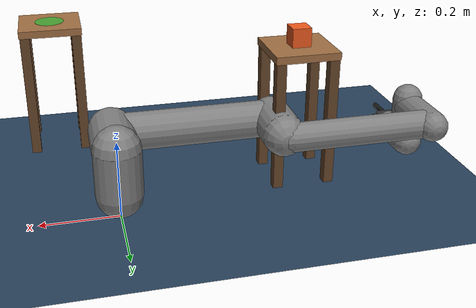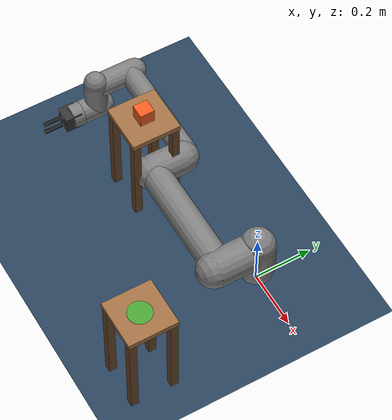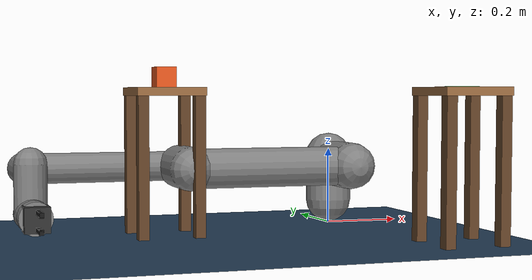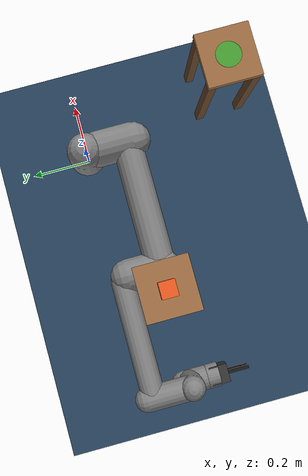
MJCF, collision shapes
<mujoco model="ur5e_pick">
  <compiler meshdir="ur5e_model/assets"/>
  <include file="ur5e_model/ur5e_with_gripper.xml"/>

  <statistic center="-0.18 -0.31 0.35" extent="1.0"/>

  <visual>
    <headlight diffuse="0.6 0.6 0.6" ambient="0.3 0.3 0.3" specular="0 0 0"/>
    <rgba haze="0.15 0.25 0.35 1"/>
    <global azimuth="150" elevation="-22"/>
  </visual>

  <asset>
    <texture type="skybox" builtin="gradient" rgb1="0.3 0.5 0.7" rgb2="0 0 0" width="512" height="3072"/>
    <texture type="2d" name="groundplane" builtin="checker" mark="edge" rgb1="0.2 0.3 0.4" rgb2="0.1 0.2 0.3" markrgb="0.8 0.8 0.8" width="300" height="300"/>
    <material name="groundplane" texture="groundplane" texuniform="true" texrepeat="5 5" reflectance="0.2"/>
    <material name="table_top" rgba="0.62 0.43 0.26 1"/>
    <material name="table_leg" rgba="0.40 0.27 0.16 1"/>
  </asset>

  <worldbody>
    <light pos="0 0 1.5" dir="0 0 -1" directional="true"/>
    <geom name="floor" size="0 0 .05" type="plane" material="groundplane"/>

    <camera name="overhead" pos="-0.18 -0.31 1.15" xyaxes="1 0 0 0 1 0" fovy="58"/>

    <body name="pick_table" pos="-0.49 -0.13 0">
      <geom name="pick_top" type="box" pos="0 0 0.355" size="0.085 0.085 0.01" material="table_top"/>
      <geom name="pick_leg_a" type="box" pos="0.07 0.07 0.1725" size="0.013 0.013 0.1725" material="table_leg"/>
      <geom name="pick_leg_b" type="box" pos="-0.07 0.07 0.1725" size="0.013 0.013 0.1725" material="table_leg"/>
      <geom name="pick_leg_c" type="box" pos="0.07 -0.07 0.1725" size="0.013 0.013 0.1725" material="table_leg"/>
      <geom name="pick_leg_d" type="box" pos="-0.07 -0.07 0.1725" size="0.013 0.013 0.1725" material="table_leg"/>
    </body>

    <body name="place_table" pos="0.13 -0.49 0">
      <geom name="place_top" type="box" pos="0 0 0.355" size="0.085 0.085 0.01" material="table_top"/>
      <geom name="place_leg_a" type="box" pos="0.07 0.07 0.1725" size="0.013 0.013 0.1725" material="table_leg"/>
      <geom name="place_leg_b" type="box" pos="-0.07 0.07 0.1725" size="0.013 0.013 0.1725" material="table_leg"/>
      <geom name="place_leg_c" type="box" pos="0.07 -0.07 0.1725" size="0.013 0.013 0.1725" material="table_leg"/>
      <geom name="place_leg_d" type="box" pos="-0.07 -0.07 0.1725" size="0.013 0.013 0.1725" material="table_leg"/>
    </body>

    <!-- Graspable cube (50 mm), resting on the pick table (center z=0.39, base
         at 0.365 flush on the table top). Compact, so it is gripped about its
         centre and cannot topple. -->
    <body name="object" pos="-0.49 -0.13 0.39">
      <freejoint name="object_free"/>
      <geom name="object_geom" type="box" size="0.025 0.025 0.025"
            rgba="0.93 0.35 0.12 1" mass="0.05" friction="1.5 0.05 0.001"/>
    </body>

    <!-- Place target marker on the place table (visual only). -->
    <site name="place_marker" pos="0.13 -0.49 0.366" size="0.04 0.001" rgba="0.1 0.8 0.2 0.6" type="cylinder"/>
    <site name="target_marker" pos="-0.49 -0.13 0.47" size="0.02" rgba="1 0 0 0" type="sphere"/>
  </worldbody>

  <equality>
    <weld name="grasp" body1="gripper_base" body2="object" active="false"/>
  </equality>
</mujoco>

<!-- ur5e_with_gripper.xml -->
<mujoco model="ur5e_with_gripper">
  <compiler angle="radian" autolimits="true"/>

  <option integrator="implicitfast"/>

  <default>
    <default class="ur5e">
      <material specular="0.5" shininess="0.25"/>
      <joint axis="0 1 0" range="-6.28319 6.28319" armature="0.1"/>
      <general gaintype="fixed" biastype="affine" ctrlrange="-6.2831 6.2831" gainprm="2000" biasprm="0 -2000 -400"
        forcerange="-150 150"/>
      <default class="size3">
        <default class="size3_limited">
          <joint range="-3.1415 3.1415"/>
          <general ctrlrange="-3.1415 3.1415"/>
        </default>
      </default>
      <default class="size1">
        <general gainprm="500" biasprm="0 -500 -100" forcerange="-28 28"/>
      </default>
      <default class="visual">
        <geom type="mesh" contype="0" conaffinity="0" group="2"/>
      </default>
      <default class="collision">
        <geom type="capsule" group="3"/>
        <default class="eef_collision">
          <geom type="cylinder"/>
        </default>
      </default>
      <site size="0.001" rgba="0.5 0.5 0.5 0.3" group="4"/>
    </default>

    <!-- Gripper Defaults -->
    <default class="gripper">
      <geom type="box" material="gripper_mat"/>
      <joint type="slide" range="0 0.05" armature="0.1" damping="10" limited="true"/>
      <default class="finger">
        <geom material="finger_mat"/>
      </default>
    </default>
  </default>

  <asset>
    <material class="ur5e" name="black" rgba="0.033 0.033 0.033 1"/>
    <material class="ur5e" name="jointgray" rgba="0.278 0.278 0.278 1"/>
    <material class="ur5e" name="linkgray" rgba="0.82 0.82 0.82 1"/>
    <material class="ur5e" name="urblue" rgba="0.49 0.678 0.8 1"/>

    <!-- Gripper Materials -->
    <material name="gripper_mat" rgba="0.2 0.2 0.2 1"/>
    <material name="finger_mat" rgba="0.1 0.1 0.1 1"/>

    <mesh file="base_0.obj"/>
    <mesh file="base_1.obj"/>
    <mesh file="shoulder_0.obj"/>
    <mesh file="shoulder_1.obj"/>
    <mesh file="shoulder_2.obj"/>
    <mesh file="upperarm_0.obj"/>
    <mesh file="upperarm_1.obj"/>
    <mesh file="upperarm_2.obj"/>
    <mesh file="upperarm_3.obj"/>
    <mesh file="forearm_0.obj"/>
    <mesh file="forearm_1.obj"/>
    <mesh file="forearm_2.obj"/>
    <mesh file="forearm_3.obj"/>
    <mesh file="wrist1_0.obj"/>
    <mesh file="wrist1_1.obj"/>
    <mesh file="wrist1_2.obj"/>
    <mesh file="wrist2_0.obj"/>
    <mesh file="wrist2_1.obj"/>
    <mesh file="wrist2_2.obj"/>
    <mesh file="wrist3.obj"/>
  </asset>

  <worldbody>
    <light name="spotlight" mode="targetbodycom" target="wrist_2_link" pos="0 -1 2"/>
    <body name="base" quat="0 0 0 -1" childclass="ur5e">
      <inertial mass="4.0" pos="0 0 0" diaginertia="0.00443333156 0.00443333156 0.0072"/>
      <geom mesh="base_0" material="black" class="visual"/>
      <geom mesh="base_1" material="jointgray" class="visual"/>
      <body name="shoulder_link" pos="0 0 0.163">
        <inertial mass="3.7" pos="0 0 0" diaginertia="0.0102675 0.0102675 0.00666"/>
        <joint name="shoulder_pan_joint" class="size3" axis="0 0 1"/>
        <geom mesh="shoulder_0" material="urblue" class="visual"/>
        <geom mesh="shoulder_1" material="black" class="visual"/>
        <geom mesh="shoulder_2" material="jointgray" class="visual"/>
        <geom class="collision" size="0.06 0.06" pos="0 0 -0.04"/>
        <body name="upper_arm_link" pos="0 0.138 0" quat="1 0 1 0">
          <inertial mass="8.393" pos="0 0 0.2125" diaginertia="0.133886 0.133886 0.0151074"/>
          <joint name="shoulder_lift_joint" class="size3"/>
          <geom mesh="upperarm_0" material="linkgray" class="visual"/>
          <geom mesh="upperarm_1" material="black" class="visual"/>
          <geom mesh="upperarm_2" material="jointgray" class="visual"/>
          <geom mesh="upperarm_3" material="urblue" class="visual"/>
          <geom class="collision" pos="0 -0.04 0" quat="1 1 0 0" size="0.06 0.06"/>
          <geom class="collision" size="0.05 0.2" pos="0 0 0.2"/>
          <body name="forearm_link" pos="0 -0.131 0.425">
            <inertial mass="2.275" pos="0 0 0.196" diaginertia="0.0311796 0.0311796 0.004095"/>
            <joint name="elbow_joint" class="size3_limited"/>
            <geom mesh="forearm_0" material="urblue" class="visual"/>
            <geom mesh="forearm_1" material="linkgray" class="visual"/>
            <geom mesh="forearm_2" material="black" class="visual"/>
            <geom mesh="forearm_3" material="jointgray" class="visual"/>
            <geom class="collision" pos="0 0.08 0" quat="1 1 0 0" size="0.055 0.06"/>
            <geom class="collision" size="0.038 0.19" pos="0 0 0.2"/>
            <body name="wrist_1_link" pos="0 0 0.392" quat="1 0 1 0">
              <inertial mass="1.219" pos="0 0.127 0" diaginertia="0.0025599 0.0025599 0.0021942"/>
              <joint name="wrist_1_joint" class="size1"/>
              <geom mesh="wrist1_0" material="black" class="visual"/>
              <geom mesh="wrist1_1" material="urblue" class="visual"/>
              <geom mesh="wrist1_2" material="jointgray" class="visual"/>
              <geom class="collision" pos="0 0.05 0" quat="1 1 0 0" size="0.04 0.07"/>
              <body name="wrist_2_link" pos="0 0.127 0">
                <inertial mass="1.219" pos="0 0 0.1" diaginertia="0.0025599 0.0025599 0.0021942"/>
                <joint name="wrist_2_joint" axis="0 0 1" class="size1"/>
                <geom mesh="wrist2_0" material="black" class="visual"/>
                <geom mesh="wrist2_1" material="urblue" class="visual"/>
                <geom mesh="wrist2_2" material="jointgray" class="visual"/>
                <geom class="collision" size="0.04 0.06" pos="0 0 0.04"/>
                <geom class="collision" pos="0 0.02 0.1" quat="1 1 0 0" size="0.04 0.04"/>
                <body name="wrist_3_link" pos="0 0 0.1">
                  <inertial mass="0.1889" pos="0 0.0771683 0" quat="1 0 0 1"
                    diaginertia="0.000132134 9.90863e-05 9.90863e-05"/>
                  <joint name="wrist_3_joint" class="size1"/>
                  <geom material="linkgray" mesh="wrist3" class="visual"/>
                  <geom class="eef_collision" pos="0 0.08 0" quat="1 1 0 0" size="0.04 0.02"/>
                  <site name="attachment_site" pos="0 0.1 0" quat="-1 1 0 0"/>

                  <!-- GRIPPER ATTACHED HERE -->
                  <body name="gripper_base" pos="0 0.1 0" quat="-1 1 0 0">
                      <geom name="gripper_base_geom" size="0.03 0.03 0.03" type="box" class="gripper"/>

                      <!-- Right Finger -->
                      <body name="right_finger" pos="0 0.02 0.06">
                        <joint name="right_driver" axis="0 1 0" class="gripper"/>
                        <geom name="right_finger_geom" size="0.005 0.005 0.04" class="finger"/>
                        <geom name="right_pad" pos="0 -0.005 0.03" size="0.005 0.002 0.01" class="finger"/>
                        <site name="right_pad_site" pos="0 -0.007 0.03" size="0.005" rgba="0 1 0 0.5"/>
                      </body>

                      <!-- Left Finger -->
                      <body name="left_finger" pos="0 -0.02 0.06">
                        <joint name="left_driver" axis="0 -1 0" class="gripper"/>
                        <geom name="left_finger_geom" size="0.005 0.005 0.04" class="finger"/>
                        <geom name="left_pad" pos="0 0.005 0.03" size="0.005 0.002 0.01" class="finger"/>
                      </body>

                      <!-- Pinch Site (EEF) -->
                      <site name="pinch" pos="0 0 0.10" size="0.01" rgba="1 0 0 0.5"/>

                      <camera name="wrist" pos="0 0 0.045" xyaxes="1 0 0 0 -1 0" fovy="75"/>
                    </body>
                    <!-- END GRIPPER -->

                </body>
              </body>
            </body>
          </body>
        </body>
      </body>
    </body>
  </worldbody>

  <actuator>
    <motor name="shoulder_pan" joint="shoulder_pan_joint" ctrllimited="true" ctrlrange="-150 150"/>
    <motor name="shoulder_lift" joint="shoulder_lift_joint" ctrllimited="true" ctrlrange="-150 150"/>
    <motor name="elbow" joint="elbow_joint" ctrllimited="true" ctrlrange="-150 150"/>
    <motor name="wrist_1" joint="wrist_1_joint" ctrllimited="true" ctrlrange="-28 28"/>
    <motor name="wrist_2" joint="wrist_2_joint" ctrllimited="true" ctrlrange="-28 28"/>
    <motor name="wrist_3" joint="wrist_3_joint" ctrllimited="true" ctrlrange="-28 28"/>

    <!-- Gripper Actuators -->
    <position name="gripper_open" joint="right_driver" kp="800" kv="40" ctrlrange="0 0.04"/>
    <position name="gripper_close" joint="left_driver" kp="800" kv="40" ctrlrange="0 0.04"/>
  </actuator>

  <keyframe>
    <key name="home" qpos="-1.5708 -1.5708 1.5708 -1.5708 -1.5708 0 0 0" ctrl="-1.5708 -1.5708 1.5708 -1.5708 -1.5708 0 0 0"/>
  </keyframe>
</mujoco>
